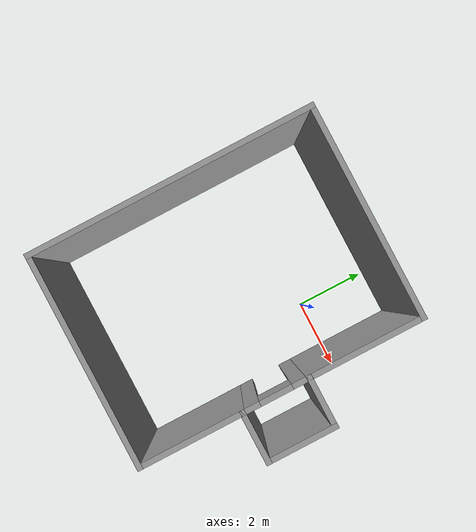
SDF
<?xml version='1.0'?>
<sdf version='1.7'>
  <model name='Room_A'>
    <pose>-0.862823 -1.75671 0 0 -0 0</pose>
    <link name='Wall_11'>
      <collision name='Wall_11_Collision'>
        <geometry>
          <box>
            <size>8 0.15 2.5</size>
          </box>
        </geometry>
        <pose>0 0 1.25 0 -0 0</pose>
      </collision>
      <visual name='Wall_11_Visual'>
        <pose>0 0 1.25 0 -0 0</pose>
        <geometry>
          <box>
            <size>8 0.15 2.5</size>
          </box>
        </geometry>
        <material>
          <script>
            <uri>file://media/materials/scripts/gazebo.material</uri>
            <name>Gazebo/Grey</name>
          </script>
          <ambient>1 1 1 1</ambient>
        </material>
        <meta>
          <layer>0</layer>
        </meta>
      </visual>
      <pose>-3.6 -0 0 0 -0 -1.5708</pose>
    </link>
    <link name='Wall_12'>
      <collision name='Wall_12_Collision'>
        <geometry>
          <box>
            <size>6 0.15 2.5</size>
          </box>
        </geometry>
        <pose>0 0 1.25 0 -0 0</pose>
      </collision>
      <visual name='Wall_12_Visual'>
        <pose>0 0 1.25 0 -0 0</pose>
        <geometry>
          <box>
            <size>6 0.15 2.5</size>
          </box>
        </geometry>
        <material>
          <script>
            <uri>file://media/materials/scripts/gazebo.material</uri>
            <name>Gazebo/Grey</name>
          </script>
          <ambient>1 1 1 1</ambient>
        </material>
        <meta>
          <layer>0</layer>
        </meta>
      </visual>
      <pose>-0.675 -3.925 0 0 -0 0</pose>
    </link>
    <link name='Wall_13'>
      <collision name='Wall_13_Collision'>
        <geometry>
          <box>
            <size>3 0.15 2.5</size>
          </box>
        </geometry>
        <pose>0 0 1.25 0 -0 0</pose>
      </collision>
      <visual name='Wall_13_Visual'>
        <pose>0 0 1.25 0 -0 0</pose>
        <geometry>
          <box>
            <size>3 0.15 2.5</size>
          </box>
        </geometry>
        <material>
          <script>
            <uri>file://media/materials/scripts/gazebo.material</uri>
            <name>Gazebo/Grey</name>
          </script>
          <ambient>1 1 1 1</ambient>
        </material>
        <meta>
          <layer>0</layer>
        </meta>
      </visual>
      <pose>2.25 -2.5 0 0 -0 1.5708</pose>
    </link>
    <link name='Wall_14'>
      <collision name='Wall_14_Collision'>
        <geometry>
          <box>
            <size>1.5 0.15 2.5</size>
          </box>
        </geometry>
        <pose>0 0 1.25 0 -0 0</pose>
      </collision>
      <visual name='Wall_14_Visual'>
        <pose>0 0 1.25 0 -0 0</pose>
        <geometry>
          <box>
            <size>1.5 0.15 2.5</size>
          </box>
        </geometry>
        <material>
          <script>
            <uri>file://media/materials/scripts/gazebo.material</uri>
            <name>Gazebo/Grey</name>
          </script>
          <ambient>1 1 1 1</ambient>
        </material>
        <meta>
          <layer>0</layer>
        </meta>
      </visual>
      <pose>2.925 -1.075 0 0 -0 0</pose>
    </link>
    <link name='Wall_15'>
      <collision name='Wall_15_Collision'>
        <geometry>
          <box>
            <size>2 0.15 2.5</size>
          </box>
        </geometry>
        <pose>0 0 1.25 0 -0 0</pose>
      </collision>
      <visual name='Wall_15_Visual'>
        <pose>0 0 1.25 0 -0 0</pose>
        <geometry>
          <box>
            <size>2 0.15 2.5</size>
          </box>
        </geometry>
        <material>
          <script>
            <uri>file://media/materials/scripts/gazebo.material</uri>
            <name>Gazebo/Grey</name>
          </script>
          <ambient>1 1 1 1</ambient>
        </material>
        <meta>
          <layer>0</layer>
        </meta>
      </visual>
      <pose>3.6 -0.15 0 0 -0 1.5708</pose>
    </link>
    <link name='Wall_16'>
      <collision name='Wall_16_Collision'>
        <geometry>
          <box>
            <size>1.5 0.15 2.5</size>
          </box>
        </geometry>
        <pose>0 0 1.25 0 -0 0</pose>
      </collision>
      <visual name='Wall_16_Visual'>
        <pose>0 0 1.25 0 -0 0</pose>
        <geometry>
          <box>
            <size>1.5 0.15 2.5</size>
          </box>
        </geometry>
        <material>
          <script>
            <uri>file://media/materials/scripts/gazebo.material</uri>
            <name>Gazebo/Grey</name>
          </script>
          <ambient>1 1 1 1</ambient>
        </material>
        <meta>
          <layer>0</layer>
        </meta>
      </visual>
      <pose>2.925 0.775 0 0 -0 3.14159</pose>
    </link>
    <link name='Wall_18'>
      <collision name='Wall_18_Collision'>
        <geometry>
          <box>
            <size>6 0.15 2.5</size>
          </box>
        </geometry>
        <pose>0 0 1.25 0 -0 0</pose>
      </collision>
      <visual name='Wall_18_Visual'>
        <pose>0 0 1.25 0 -0 0</pose>
        <geometry>
          <box>
            <size>6 0.15 2.5</size>
          </box>
        </geometry>
        <material>
          <script>
            <uri>file://media/materials/scripts/gazebo.material</uri>
            <name>Gazebo/Grey</name>
          </script>
          <ambient>1 1 1 1</ambient>
        </material>
        <meta>
          <layer>0</layer>
        </meta>
      </visual>
      <pose>-0.675 3.925 0 0 -0 0</pose>
    </link>
    <link name='Wall_19'>
      <collision name='Wall_19_Collision'>
        <geometry>
          <box>
            <size>3.3 0.15 2.5</size>
          </box>
        </geometry>
        <pose>0 0 1.25 0 -0 0</pose>
      </collision>
      <visual name='Wall_19_Visual'>
        <pose>0 0 1.25 0 -0 0</pose>
        <geometry>
          <box>
            <size>3.3 0.15 2.5</size>
          </box>
        </geometry>
        <material>
          <script>
            <uri>file://media/materials/scripts/gazebo.material</uri>
            <name>Gazebo/Grey</name>
          </script>
          <ambient>1 1 1 1</ambient>
        </material>
        <meta>
          <layer>0</layer>
        </meta>
      </visual>
      <pose>2.25 2.35 0 0 -0 -1.5708</pose>
    </link>
    <link name='Wall_21'>
      <pose>2.25 -0.15 0 0 -0 -1.5708</pose>
      <visual name='Wall_21_Visual_0'>
        <pose>-0.728806 0 1.25 0 -0 0</pose>
        <geometry>
          <box>
            <size>0.542388 0.15 2.5</size>
          </box>
        </geometry>
        <material>
          <script>
            <uri>file://media/materials/scripts/gazebo.material</uri>
            <name>Gazebo/Grey</name>
          </script>
          <ambient>1 1 1 1</ambient>
        </material>
        <meta>
          <layer>0</layer>
        </meta>
      </visual>
      <collision name='Wall_21_Collision_0'>
        <geometry>
          <box>
            <size>0.542388 0.15 2.5</size>
          </box>
        </geometry>
        <pose>-0.728806 0 1.25 0 -0 0</pose>
      </collision>
      <visual name='Wall_21_Visual_1'>
        <pose>0.721194 0 1.25 0 -0 0</pose>
        <geometry>
          <box>
            <size>0.557612 0.15 2.5</size>
          </box>
        </geometry>
        <material>
          <script>
            <uri>file://media/materials/scripts/gazebo.material</uri>
            <name>Gazebo/Grey</name>
          </script>
          <ambient>1 1 1 1</ambient>
        </material>
        <meta>
          <layer>0</layer>
        </meta>
      </visual>
      <collision name='Wall_21_Collision_1'>
        <geometry>
          <box>
            <size>0.557612 0.15 2.5</size>
          </box>
        </geometry>
        <pose>0.721194 0 1.25 0 -0 0</pose>
      </collision>
      <visual name='Wall_21_Visual_2'>
        <pose>-0.007612 0 2.25 0 -0 0</pose>
        <geometry>
          <box>
            <size>0.9 0.15 0.5</size>
          </box>
        </geometry>
        <material>
          <script>
            <uri>file://media/materials/scripts/gazebo.material</uri>
            <name>Gazebo/Grey</name>
          </script>
          <ambient>1 1 1 1</ambient>
        </material>
        <meta>
          <layer>0</layer>
        </meta>
      </visual>
      <collision name='Wall_21_Collision_2'>
        <geometry>
          <box>
            <size>0.9 0.15 0.5</size>
          </box>
        </geometry>
        <pose>-0.007612 0 2.25 0 -0 0</pose>
      </collision>
    </link>
    <static>1</static>
  </model>
</sdf>
